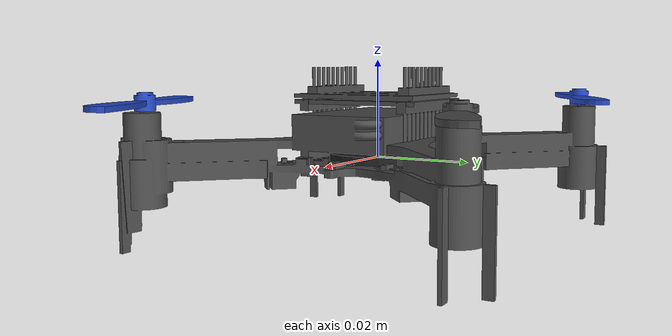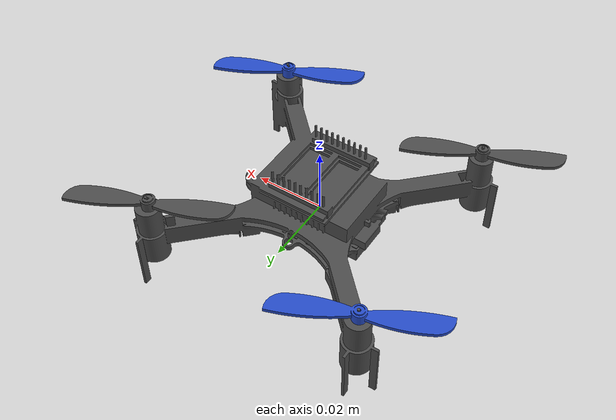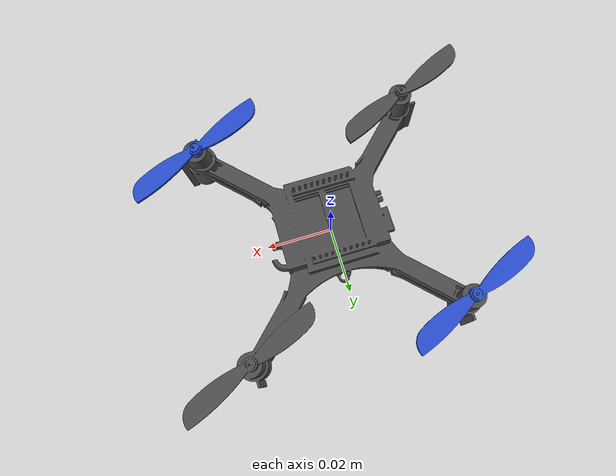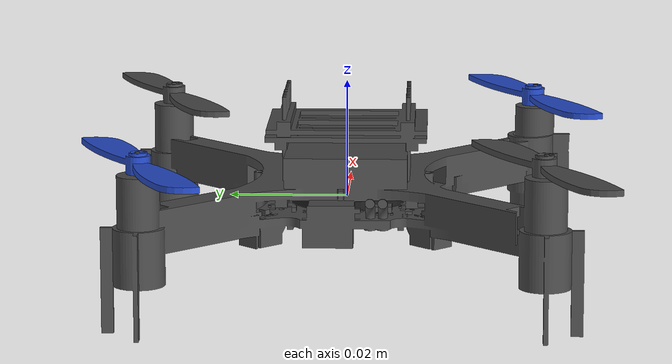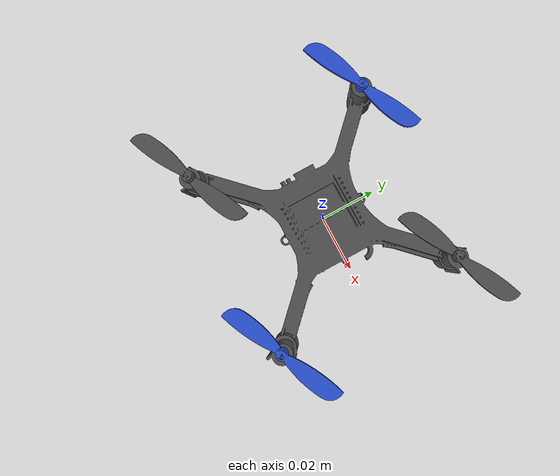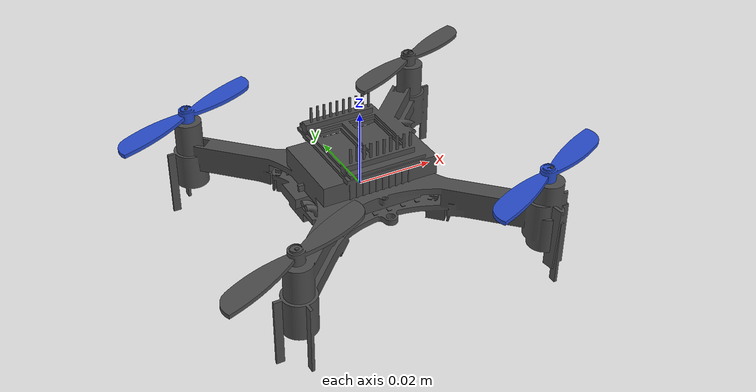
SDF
<sdf version='1.5'>
  <model name='crazyflie_x_hitl'>
    <!-- Crazyflie body -->
    <link name='base_link'>
      <pose>0 0 0 0 0 0</pose>
      <inertial>
        <pose>0 0 0 0 0 0</pose>
        <mass>0.025</mass>
        <inertia>
          <ixx>1.395e-5</ixx>
          <ixy>0</ixy>
          <ixz>0</ixz>
          <iyy>1.395e-05</iyy>
          <iyz>0</iyz>
          <izz>2.173e-05</izz>
        </inertia>
      </inertial>
      <collision name='base_link_inertia_collision'>
        <pose>0 0 0 0 0 0</pose>
        <geometry>
          <box>
            <size>0.07 0.07 0.025</size>
          </box>
        </geometry>
        <surface>
          <contact>
            <ode>
              <min_depth>0.001</min_depth>
              <max_vel>0</max_vel>
            </ode>
          </contact>
          <friction>
            <ode/>
          </friction>
        </surface>
      </collision>
      <visual name='base_link_inertia_visual'>
        <pose>0 0 0 0 0 0</pose>
        <geometry>
          <mesh>
            <scale>0.01 0.01 0.01</scale>
            <uri>model://crazyflie/meshes/crazyflie.stl</uri>
          </mesh>
        </geometry>
        <material>
          <script>
            <name>Gazebo/DarkGrey</name>
            <uri>file://media/materials/scripts/gazebo.material</uri>
          </script>
        </material>
      </visual>
      <gravity>1</gravity>
      <velocity_decay/>
      <self_collide>0</self_collide>
    </link>
    <link name='imu_link'>
      <pose>0 0 0 0 0 0</pose>
      <inertial>
        <pose>0 0 0 0 0 0</pose>
        <mass>5e-03</mass>
        <inertia>
          <ixx>1e-10</ixx>
          <ixy>0</ixy>
          <ixz>0</ixz>
          <iyy>1e-10</iyy>
          <iyz>0</iyz>
          <izz>1e-10</izz>
        </inertia>
      </inertial>
    </link>
    <joint name='imu_joint' type='revolute'>
      <child>imu_link</child>
      <parent>base_link</parent>
      <axis>
        <xyz>1 0 0</xyz>
        <limit>
          <lower>0</lower>
          <upper>0</upper>
          <effort>0</effort>
          <velocity>0</velocity>
        </limit>
        <dynamics>
          <spring_reference>0</spring_reference>
          <spring_stiffness>0</spring_stiffness>
        </dynamics>
        <use_parent_model_frame>1</use_parent_model_frame>
      </axis>
    </joint>
    <link name='rotor_0'>
      <pose>0.032527 -0.032527 0.0125 0 -0 0</pose>
      <inertial>
        <pose>0 0 0 0 0 0</pose>
        <mass>0.00075</mass>
        <inertia>
          <ixx>1.61875e-012</ixx>
          <ixy>0</ixy>
          <ixz>0</ixz>
          <iyy>1.61875e-012</iyy>
          <iyz>0</iyz>
          <izz>1.61875e-012</izz>
        </inertia>
      </inertial>
      <visual name='rotor_0_visual'>
        <pose>0 0 0 0 -0 0</pose>
        <geometry>
          <mesh>
            <scale>0.01 0.01 0.01</scale>
            <uri>model://crazyflie/meshes/crazyflie_prop.stl</uri>
          </mesh>
        </geometry>
        <material>
          <script>
            <name>Gazebo/Blue</name>
            <uri>file://media/materials/scripts/gazebo.material</uri>
          </script>
        </material>
      </visual>
      <gravity>1</gravity>
      <velocity_decay/>
      <self_collide>0</self_collide>
    </link>
    <joint name='rotor_0_joint' type='revolute'>
      <child>rotor_0</child>
      <parent>base_link</parent>
      <axis>
        <xyz>0 0 1</xyz>
        <limit>
          <lower>-1e+16</lower>
          <upper>1e+16</upper>
        </limit>
        <dynamics>
          <spring_reference>0</spring_reference>
          <spring_stiffness>0</spring_stiffness>
        </dynamics>
        <use_parent_model_frame>1</use_parent_model_frame>
      </axis>
    </joint>
    <link name='rotor_1'>
      <pose>-0.032527 -0.032527 0.0125 0 -0 0</pose>
      <inertial>
        <pose>0 0 0 0 0 0</pose>
        <mass>0.00075</mass>
        <inertia>
          <ixx>1.61875e-012</ixx>
          <ixy>0</ixy>
          <ixz>0</ixz>
          <iyy>1.61875e-012</iyy>
          <iyz>0</iyz>
          <izz>1.61875e-012</izz>
        </inertia>
      </inertial>
      <visual name='rotor_1_visual'>
        <pose>0 0 0 0 -0 0</pose>
        <geometry>
          <mesh>
            <scale>0.01 0.01 0.01</scale>
            <uri>model://crazyflie/meshes/crazyflie_prop.stl</uri>
          </mesh>
        </geometry>
        <material>
          <script>
            <name>Gazebo/DarkGrey</name>
            <uri>file://media/materials/scripts/gazebo.material</uri>
          </script>
        </material>
      </visual>
      <gravity>1</gravity>
      <velocity_decay/>
      <self_collide>0</self_collide>
    </link>
    <joint name='rotor_1_joint' type='revolute'>
      <child>rotor_1</child>
      <parent>base_link</parent>
      <axis>
        <xyz>0 0 1</xyz>
        <limit>
          <lower>-1e+16</lower>
          <upper>1e+16</upper>
        </limit>
        <dynamics>
          <spring_reference>0</spring_reference>
          <spring_stiffness>0</spring_stiffness>
        </dynamics>
        <use_parent_model_frame>1</use_parent_model_frame>
      </axis>
    </joint>
    <link name='rotor_2'>
      <pose>-0.032527 0.032527 0.0125 0 -0 0</pose>
      <inertial>
        <pose>0 0 0 0 0 0</pose>
        <mass>0.00075</mass>
        <inertia>
          <ixx>1.61875e-012</ixx>
          <ixy>0</ixy>
          <ixz>0</ixz>
          <iyy>1.61875e-012</iyy>
          <iyz>0</iyz>
          <izz>1.61875e-012</izz>
        </inertia>
      </inertial>
      <visual name='rotor_2_visual'>
        <pose>0 0 0 0 -0 0</pose>
        <geometry>
          <mesh>
            <scale>0.01 0.01 0.01</scale>
            <uri>model://crazyflie/meshes/crazyflie_prop.stl</uri>
          </mesh>
        </geometry>
        <material>
          <script>
            <name>Gazebo/Blue</name>
            <uri>file://media/materials/scripts/gazebo.material</uri>
          </script>
        </material>
      </visual>
      <gravity>1</gravity>
      <velocity_decay/>
      <self_collide>0</self_collide>
    </link>
    <joint name='rotor_2_joint' type='revolute'>
      <child>rotor_2</child>
      <parent>base_link</parent>
      <axis>
        <xyz>0 0 1</xyz>
        <limit>
          <lower>-1e+16</lower>
          <upper>1e+16</upper>
        </limit>
        <dynamics>
          <spring_reference>0</spring_reference>
          <spring_stiffness>0</spring_stiffness>
        </dynamics>
        <use_parent_model_frame>1</use_parent_model_frame>
      </axis>
    </joint>
    <link name='rotor_3'>
      <pose>0.032527 0.032527 0.0125 0 -0 0</pose>
      <inertial>
        <pose>0 0 0 0 0 0</pose>
        <mass>0.00075</mass>
        <inertia>
          <ixx>1.61875e-012</ixx>
          <ixy>0</ixy>
          <ixz>0</ixz>
          <iyy>1.61875e-012</iyy>
          <iyz>0</iyz>
          <izz>1.61875e-012</izz>
        </inertia>
      </inertial>
      <visual name='rotor_3_visual'>
        <pose>0 0 0 0 -0 0</pose>
        <geometry>
          <mesh>
            <scale>0.01 0.01 0.01</scale>
            <uri>model://crazyflie/meshes/crazyflie_prop.stl</uri>
          </mesh>
        </geometry>
        <material>
          <script>
            <name>Gazebo/DarkGrey</name>
            <uri>file://media/materials/scripts/gazebo.material</uri>
          </script>
        </material>
      </visual>
      <gravity>1</gravity>
      <velocity_decay/>
      <self_collide>0</self_collide>
    </link>
    <joint name='rotor_3_joint' type='revolute'>
      <child>rotor_3</child>
      <parent>base_link</parent>
      <axis>
        <xyz>0 0 1</xyz>
        <limit>
          <lower>-1e+16</lower>
          <upper>1e+16</upper>
        </limit>
        <dynamics>
          <spring_reference>0</spring_reference>
          <spring_stiffness>0</spring_stiffness>
        </dynamics>
        <use_parent_model_frame>1</use_parent_model_frame>
      </axis>
    </joint>
    <plugin name='rosbag' filename='libgazebo_multirotor_base_plugin.so'>
      <robotNamespace></robotNamespace>
      <linkName>base_link</linkName>
      <rotorVelocitySlowdownSim>10</rotorVelocitySlowdownSim>
    </plugin>
    <plugin name='front_right_motor_model' filename='libgazebo_motor_model.so'>
      <robotNamespace></robotNamespace>
      <jointName>rotor_0_joint</jointName>
      <linkName>rotor_0</linkName>
      <turningDirection>ccw</turningDirection>
      <timeConstantUp>0.0125</timeConstantUp>
      <timeConstantDown>0.025</timeConstantDown>
      <maxRotVelocity>2800</maxRotVelocity>
      <motorConstant>2.963645E-08</motorConstant>
      <momentConstant>5.964552e-03</momentConstant>
      <commandSubTopic>/gazebo/command/motor_speed</commandSubTopic>
      <motorNumber>0</motorNumber>
      <rotorDragCoefficient>9.1785e-07</rotorDragCoefficient>
      <rollingMomentCoefficient>0</rollingMomentCoefficient>
      <motorSpeedPubTopic>/motor_speed/0</motorSpeedPubTopic>
      <rotorVelocitySlowdownSim>100</rotorVelocitySlowdownSim>
    </plugin>
    <plugin name='back_left_motor_model' filename='libgazebo_motor_model.so'>
      <robotNamespace></robotNamespace>
      <jointName>rotor_2_joint</jointName>
      <linkName>rotor_2</linkName>
      <turningDirection>ccw</turningDirection>
      <timeConstantUp>0.0125</timeConstantUp>
      <timeConstantDown>0.025</timeConstantDown>
      <maxRotVelocity>2800</maxRotVelocity>
      <motorConstant>2.963645E-08</motorConstant>
      <momentConstant>5.964552e-03</momentConstant>
      <commandSubTopic>/gazebo/command/motor_speed</commandSubTopic>
      <motorNumber>1</motorNumber>
      <rotorDragCoefficient>9.1785e-07</rotorDragCoefficient>
      <rollingMomentCoefficient>0</rollingMomentCoefficient>
      <motorSpeedPubTopic>/motor_speed/2</motorSpeedPubTopic>
      <rotorVelocitySlowdownSim>100</rotorVelocitySlowdownSim>
    </plugin>
    <plugin name='front_left_motor_model' filename='libgazebo_motor_model.so'>
      <robotNamespace></robotNamespace>
      <jointName>rotor_3_joint</jointName>
      <linkName>rotor_3</linkName>
      <turningDirection>cw</turningDirection>
      <timeConstantUp>0.0125</timeConstantUp>
      <timeConstantDown>0.025</timeConstantDown>
      <maxRotVelocity>2800</maxRotVelocity>
      <motorConstant>2.963645E-08</motorConstant>
      <momentConstant>5.964552e-03</momentConstant>
      <commandSubTopic>/gazebo/command/motor_speed</commandSubTopic>
      <motorNumber>2</motorNumber>
      <rotorDragCoefficient>9.1785e-07</rotorDragCoefficient>
      <rollingMomentCoefficient>0</rollingMomentCoefficient>
      <motorSpeedPubTopic>/motor_speed/3</motorSpeedPubTopic>
      <rotorVelocitySlowdownSim>100</rotorVelocitySlowdownSim>
    </plugin>
    <plugin name='back_right_motor_model' filename='libgazebo_motor_model.so'>
      <robotNamespace></robotNamespace>
      <jointName>rotor_1_joint</jointName>
      <linkName>rotor_1</linkName>
      <turningDirection>cw</turningDirection>
      <timeConstantUp>0.0125</timeConstantUp>
      <timeConstantDown>0.025</timeConstantDown>
      <maxRotVelocity>2800</maxRotVelocity>
      <motorConstant>2.963645E-08</motorConstant>
      <momentConstant>5.964552e-03</momentConstant>
      <commandSubTopic>/gazebo/command/motor_speed</commandSubTopic>
      <motorNumber>3</motorNumber>
      <rotorDragCoefficient>9.1785e-07</rotorDragCoefficient>
      <rollingMomentCoefficient>0</rollingMomentCoefficient>
      <motorSpeedPubTopic>/motor_speed/1</motorSpeedPubTopic>
      <rotorVelocitySlowdownSim>100</rotorVelocitySlowdownSim>
    </plugin>
    <model name='gps0'>
      <link name='link'>
        <pose frame=''>0 0 0 0 -0 0</pose>
        <inertial>
          <pose frame=''>0 0 0 0 -0 0</pose>
          <mass>0.001</mass>
          <inertia>
            <ixx>2.1733e-07</ixx>
            <ixy>0</ixy>
            <ixz>0</ixz>
            <iyy>2.1733e-07</iyy>
            <iyz>0</iyz>
            <izz>1.8e-08</izz>
          </inertia>
        </inertial>
        <visual name='visual'>
          <geometry>
            <cylinder>
              <radius>0.01</radius>
              <length>0.002</length>
            </cylinder>
          </geometry>
          <material>
            <script>
              <name>Gazebo/Black</name>
              <uri>__default__</uri>
            </script>
          </material>
        </visual>
        <sensor name='gps' type='gps'>
          <pose frame=''>0 0 0 0 -0 0</pose>
          <plugin name='gps_plugin' filename='libgazebo_gps_plugin.so'>
            <robotNamespace/>
            <gpsNoise>1</gpsNoise>
            <gpsXYRandomWalk>2.0</gpsXYRandomWalk>
            <gpsZRandomWalk>4.0</gpsZRandomWalk>
            <gpsXYNoiseDensity>0.0002</gpsXYNoiseDensity>
            <gpsZNoiseDensity>0.0004</gpsZNoiseDensity>
            <gpsVXYNoiseDensity>0.2</gpsVXYNoiseDensity>
            <gpsVZNoiseDensity>0.4</gpsVZNoiseDensity>
          </plugin>
        </sensor>
      </link>
    </model>
    <joint name='gps0_joint' type='fixed'>
      <parent>base_link</parent>
      <child>gps0::link</child>
    </joint>
    <plugin name='groundtruth_plugin' filename='libgazebo_groundtruth_plugin.so'>
      <robotNamespace/>
    </plugin>
    <plugin name='magnetometer_plugin' filename='libgazebo_magnetometer_plugin.so'>
      <robotNamespace/>
      <pubRate>100</pubRate>
      <noiseDensity>0.0004</noiseDensity>
      <randomWalk>6.4e-06</randomWalk>
      <biasCorrelationTime>600</biasCorrelationTime>
      <magTopic>/mag</magTopic>
    </plugin>
    <plugin name='barometer_plugin' filename='libgazebo_barometer_plugin.so'>
      <robotNamespace/>
      <pubRate>50</pubRate>
      <baroTopic>/baro</baroTopic>
    </plugin>
    <plugin name='mavlink_interface' filename='libgazebo_mavlink_interface.so'>
      <robotNamespace/>
      <imuSubTopic>/imu</imuSubTopic>
      <magSubTopic>/mag</magSubTopic>
      <baroSubTopic>/baro</baroSubTopic>
      <mavlink_addr>INADDR_ANY</mavlink_addr>
      <mavlink_udp_port>14560</mavlink_udp_port>
      <mavlink_tcp_port>4560</mavlink_tcp_port>
      <serialEnabled>true</serialEnabled>
      <serialDevice>/tmp/ttyACM0</serialDevice>
      <baudRate>921600</baudRate>
      <qgc_addr>INADDR_ANY</qgc_addr>
      <qgc_udp_port>14550</qgc_udp_port>
      <sdk_addr>INADDR_ANY</sdk_addr>
      <sdk_udp_port>14540</sdk_udp_port>
      <hil_mode>1</hil_mode>
      <hil_state_level>0</hil_state_level>
      <vehicle_is_tailsitter>0</vehicle_is_tailsitter>
      <send_vision_estimation>0</send_vision_estimation>
      <send_odometry>1</send_odometry>
      <enable_lockstep>1</enable_lockstep>
      <use_tcp>1</use_tcp>
      <motorSpeedCommandPubTopic>/gazebo/command/motor_speed</motorSpeedCommandPubTopic>
      <control_channels>
        <channel name='rotor1'>
          <input_index>0</input_index>
          <input_offset>0</input_offset>
          <input_scaling>2618</input_scaling>
          <zero_position_disarmed>0</zero_position_disarmed>
          <zero_position_armed>100</zero_position_armed>
          <joint_control_type>velocity</joint_control_type>
        </channel>
        <channel name='rotor2'>
          <input_index>1</input_index>
          <input_offset>0</input_offset>
          <input_scaling>2618</input_scaling>
          <zero_position_disarmed>0</zero_position_disarmed>
          <zero_position_armed>100</zero_position_armed>
          <joint_control_type>velocity</joint_control_type>
        </channel>
        <channel name='rotor3'>
          <input_index>2</input_index>
          <input_offset>0</input_offset>
          <input_scaling>2618</input_scaling>
          <zero_position_disarmed>0</zero_position_disarmed>
          <zero_position_armed>100</zero_position_armed>
          <joint_control_type>velocity</joint_control_type>
        </channel>
        <channel name='rotor4'>
          <input_index>3</input_index>
          <input_offset>0</input_offset>
          <input_scaling>2618</input_scaling>
          <zero_position_disarmed>0</zero_position_disarmed>
          <zero_position_armed>100</zero_position_armed>
          <joint_control_type>velocity</joint_control_type>
        </channel>
      </control_channels>
    </plugin>
    <static>0</static>
    <plugin name='gazebo_imu_plugin' filename='libgazebo_imu_plugin.so'>
      <robotNamespace></robotNamespace>
      <linkName>imu_link</linkName>
      <imuTopic>/imu</imuTopic>
      <gyroscopeNoiseDensity>0.0003394</gyroscopeNoiseDensity>
      <gyroscopeRandomWalk>3.8785e-05</gyroscopeRandomWalk>
      <gyroscopeBiasCorrelationTime>1000.0</gyroscopeBiasCorrelationTime>
      <gyroscopeTurnOnBiasSigma>0.0087</gyroscopeTurnOnBiasSigma>
      <accelerometerNoiseDensity>0.004</accelerometerNoiseDensity>
      <accelerometerRandomWalk>0.006</accelerometerRandomWalk>
      <accelerometerBiasCorrelationTime>300.0</accelerometerBiasCorrelationTime>
      <accelerometerTurnOnBiasSigma>0.196</accelerometerTurnOnBiasSigma>
    </plugin>
  </model>
</sdf>
